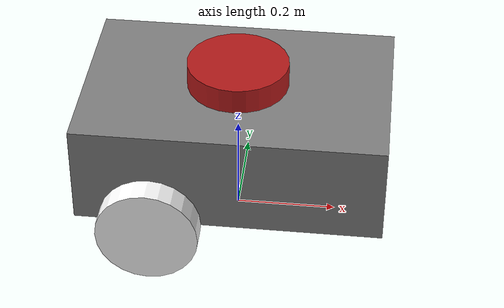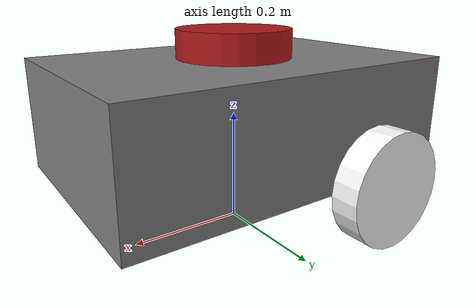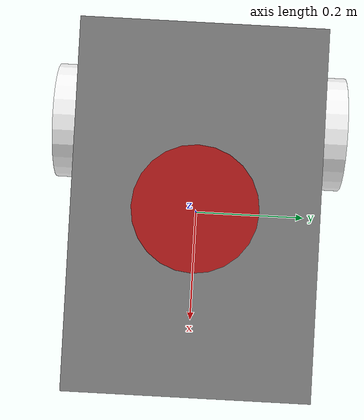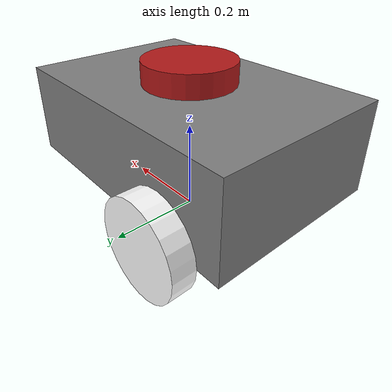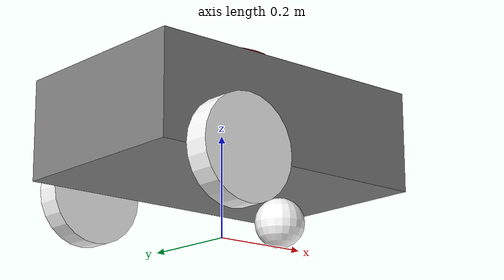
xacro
<?xml version="1.0" ?>
<robot xmlns:xacro="http://www.ros.org/wiki/xacro">

    <xacro:include
        filename="$(find fulmen_description)/urdf/config.urdf.xacro"
    />

    <material name="grey">
        <color rgba="0.5 0.5 0.5 1.0" />
    </material>

    <material name="red">
        <color rgba="0.7 0.1 0.1 1.0" />
    </material>

    <material name="white">
        <color rgba="1.0 1.0 1.0 1.0" />
    </material>

    <!-- Base -->

    <link name="base_footprint" />
    <link name="${base_link_name}">
        <visual>
            <geometry>
                <box size="${base_length} ${base_width} ${base_height}" />
            </geometry>
            <origin xyz="0 0 ${base_height/2}" rpy="0 0 0" />
            <material name="grey" />
        </visual>
        <collision>
            <geometry>
                <box size="${base_length} ${base_width} ${base_height}" />
            </geometry>
            <origin xyz="0 0 ${base_height/2}" rpy="0 0 0" />
        </collision>
        <xacro:box_inertia mass="${base_mass}" x="${base_length}" y="${base_width}" z="${base_height}" o_xyz="0 0 ${base_height/2}" o_rpy="0 0 0" />
    </link>
    <joint name="${base_joint_name}" type="fixed">
        <parent link="base_footprint" />
        <child link="${base_link_name}" />
        <origin xyz="0 0 ${side_wheel_radius}" rpy="0 0 0" />
    </joint>

    <!-- left wheel -->

    <link name="${left_wheel_link_name}">
        <visual>
            <geometry>
                <cylinder radius="${side_wheel_radius}" length="${side_wheel_length}" />
            </geometry>
            <origin xyz="0 0 0" rpy="${-pi/2} 0 0" />
            <material name="white" />
        </visual>
        <collision>
            <geometry>
                <sphere radius="${side_wheel_radius}" />
            </geometry>
            <origin xyz="0 0 0" rpy="${-pi/2} 0 0" />
        </collision>
        <xacro:cylinder_inertia mass="${side_wheel_mass}" r="${side_wheel_radius}" l="${side_wheel_length}" o_xyz="0 0 0" o_rpy="${-pi/2} 0 0"/>
    </link>
    <joint name="${left_wheel_joint_name}" type="continuous">
        <parent link="${base_link_name}" />
        <child link="${left_wheel_link_name}" />
        <origin xyz="${-base_length/4} ${(base_width+side_wheel_length)/2} 0" rpy="0 0 0" />
        <axis xyz="0 1 0" />
    </joint>

    <!-- right wheel -->

    <link name="${right_wheel_link_name}">
        <visual>
            <geometry>
                <cylinder radius="${side_wheel_radius}" length="${side_wheel_length}" />
            </geometry>
            <origin xyz="0 0 0" rpy="${-pi/2} 0 0" />
            <material name="white" />
        </visual>
        <collision>
            <geometry>
                <sphere radius="${side_wheel_radius}" />
            </geometry>
            <origin xyz="0 0 0" rpy="${-pi/2} 0 0" />
        </collision>
        <xacro:cylinder_inertia mass="${side_wheel_mass}" r="${side_wheel_radius}" l="${side_wheel_length}" o_xyz="0 0 0" o_rpy="${-pi/2} 0 0"/>
    </link>
    <joint name="${right_wheel_joint_name}" type="continuous">
        <parent link="${base_link_name}" />
        <child link="${right_wheel_link_name}" />
        <origin xyz="${-base_length/4} ${-(base_width+side_wheel_length)/2} 0" rpy="0 0 0" />
        <axis xyz="0 1 0" />
    </joint>

    <!-- caster wheel -->

    <link name="${caster_wheel_link_name}">
        <visual>
            <geometry>
                <sphere radius="${caster_wheel_radius}" />
            </geometry>
            <origin xyz="0 0 0" rpy="0 0 0" />
            <material name="white" />
        </visual>
        <collision>
            <geometry>
                <sphere radius="${caster_wheel_radius}" />
            </geometry>
            <origin xyz="0 0 0" rpy="0 0 0" />
        </collision>
        <xacro:sphere_inertia mass="${caster_wheel_mass}" r="${caster_wheel_radius}" o_xyz="0 0 0" o_rpy="0 0 0" />
    </link>
    <joint name="${caster_wheel_joint_name}" type="fixed">
        <parent link="${base_link_name}" />
        <child link="${caster_wheel_link_name}" />
        <origin xyz="${base_length/4} 0 ${-caster_wheel_radius}" rpy="0 0 0" />
    </joint>

    <!-- lidar -->

    <link name="${lidar_link_name}">
        <visual>
            <geometry>
                <cylinder radius="${lidar_radius}" length="${lidar_length}" />
            </geometry>
            <origin xyz="0 0 0" rpy="0 0 0" />
            <material name="red" />
        </visual>
        <collision>
            <geometry>
                <cylinder radius="${lidar_radius}" length="${lidar_length}" />
            </geometry>
            <origin xyz="0 0 0" rpy="0 0 0" />
        </collision>
        <xacro:cylinder_inertia mass="${lidar_mass}" r="${lidar_radius}" l="${lidar_length}" o_xyz="0 0 0" o_rpy="0 0 0" />
    </link>
    <joint name="${lidar_joint_name}" type="fixed">
        <parent link="${base_link_name}" />
        <child link="${lidar_link_name}" />
        <origin xyz="0 0 ${base_height+(lidar_length/2)}" rpy="0 0 0" />
    </joint>

</robot>

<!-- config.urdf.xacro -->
<robot xmlns:xacro="http://www.ros.org/wiki/xacro">

    <xacro:property name="base_link_name" value="base_link" />
    <xacro:property name="left_wheel_link_name" value="left_wheel_link" />
    <xacro:property name="right_wheel_link_name" value="right_wheel_link_name" />
    <xacro:property name="caster_wheel_link_name" value="caster_wheel_link_name" />
    <xacro:property name="lidar_link_name" value="lidar_link_name" />

    <xacro:property name="base_joint_name" value="base_joint" />
    <xacro:property name="left_wheel_joint_name" value="left_wheel_base_joint" />
    <xacro:property name="right_wheel_joint_name" value="right_wheel_base_joint" />
    <xacro:property name="caster_wheel_joint_name" value="caster_wheel_base_joint" />
    <xacro:property name="lidar_joint_name" value="lidar_base_joint" />

    <xacro:property name="base_length" value="0.6" />
    <xacro:property name="base_width" value="0.4" />
    <xacro:property name="base_height" value="0.2" />
    <xacro:property name="base_mass" value="1.5" />

    <xacro:property name="side_wheel_radius" value="0.1" />
    <xacro:property name="side_wheel_length" value="0.05" />
    <xacro:property name="side_wheel_mass" value="0.5" />

    <xacro:property name="caster_wheel_radius" value="0.05" />
    <xacro:property name="caster_wheel_mass" value="0.1" />

    <xacro:property name="lidar_radius" value="0.1" />
    <xacro:property name="lidar_length" value="0.05" />
    <xacro:property name="lidar_mass" value="0.1" />

    <xacro:macro name="box_inertia" params="mass x y z o_xyz o_rpy">
        <inertial>
            <mass value="${mass}" />
            <origin xyz="${o_xyz}" rpy="${o_rpy}" />
            <inertia ixx="${(mass/12) * (y*y + z*z)}" ixy="0" ixz="0"
                     iyy="${(mass/12) * (x*x + z*z)}" iyz="0"
                     izz="${(mass/12) * (x*x + y*y)}" />
        </inertial>
    </xacro:macro>

    <xacro:macro name="cylinder_inertia" params="mass r l o_xyz o_rpy">
        <inertial>
            <mass value="${mass}" />
            <origin xyz="${o_xyz}" rpy="${o_rpy}" />
            <inertia ixx="${(mass/12) * (3*r*r + l*l)}" ixy="0" ixz="0"
                     iyy="${(mass/12) * (3*r*r + l*l)}" iyz="0"
                     izz="${(mass/2) * (r*r)}" />
        </inertial>
    </xacro:macro>

    <xacro:macro name="sphere_inertia" params="mass r o_xyz o_rpy">
        <inertial>
            <mass value="${mass}" />
            <origin xyz="${o_xyz}" rpy="${o_rpy}" />
            <inertia ixx="${(2/5) * mass*r*r}" ixy="0" ixz="0"
                     iyy="${(2/5) * mass*r*r}" iyz="0"
                     izz="${(2/5) * mass*r*r}" />
        </inertial>
    </xacro:macro>

</robot>
